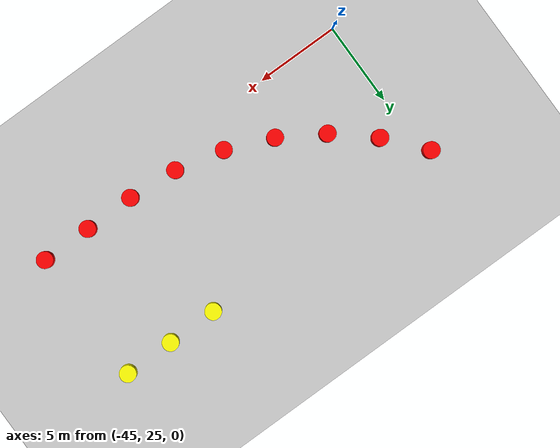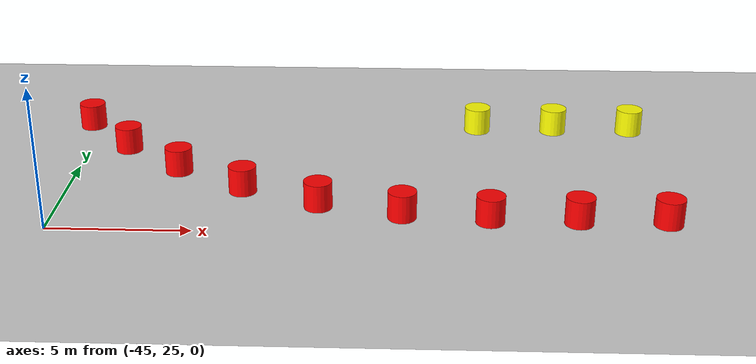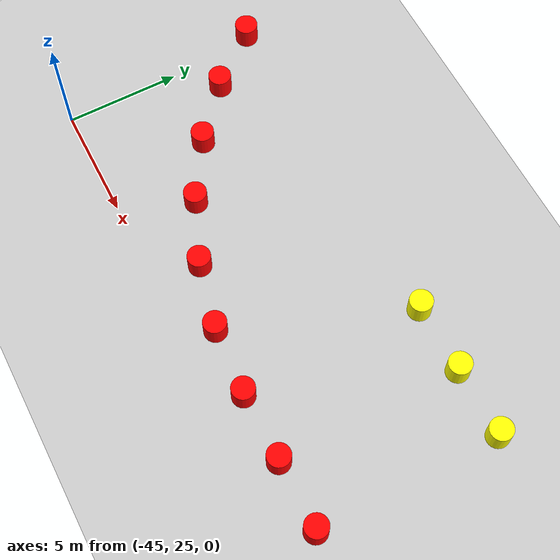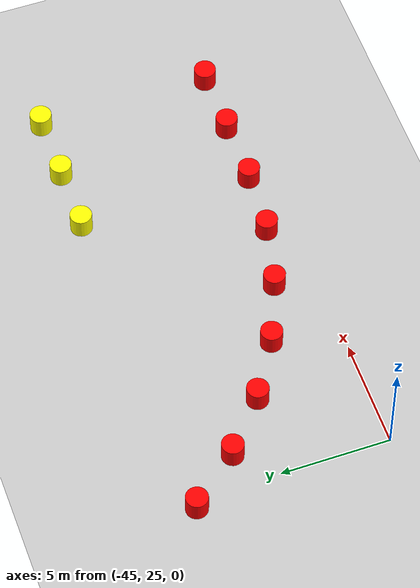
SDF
<sdf version="1.9">
 <world name="empty">
  <model name="ground_plane">
   <static>true</static>
   <link name="link">
    <collision name="collision">
     <geometry><plane><normal>0 0 1</normal><size>1000 1000</size></plane></geometry>
    </collision>
    <visual name="visual">
     <geometry><plane><normal>0 0 1</normal><size>1000 1000</size></plane></geometry>
     <material>
      <ambient>0.8 0.8 0.8 1</ambient>
      <diffuse>0.8 0.8 0.8 1</diffuse>
      <specular>0.8 0.8 0.8 1</specular>
     </material>
    </visual>
    <inertial>
     <mass>1</mass>
     <inertia><ixx>1</ixx><ixy>0</ixy><ixz>0</ixz><iyy>1</iyy><iyz>0</iyz><izz>1</izz></inertia>
    </inertial>
   </link>
  </model>
  <model name="red_cone_15">
   <pose>-24.0 26.0 0.5 0 -0 0</pose>
   <link name="cylinder_link">
    <inertial>
     <inertia>
      <ixx>0.14580000000000001</ixx>
      <ixy>0</ixy>
      <ixz>0</ixz>
      <iyy>0.14580000000000001</iyy>
      <iyz>0</iyz>
      <izz>0.125</izz>
     </inertia>
     <mass>1</mass>
    </inertial>
    <collision name="cylinder_collision">
     <geometry><cylinder><radius>0.5</radius><length>1</length></cylinder></geometry>
    </collision>
    <visual name="cylinder_visual">
     <geometry><cylinder><radius>0.5</radius><length>1</length></cylinder></geometry>
     <material><ambient>1 0 0 1</ambient><diffuse>1 0 0 1</diffuse><specular>1 1 1 1</specular></material>
    </visual>
   </link>
   <static>false</static>
  </model>
  <model name="red_cone_16">
   <pose>-27.0 26.0 0.5 0 -0 0</pose>
   <link name="cylinder_link">
    <inertial>
     <inertia>
      <ixx>0.14580000000000001</ixx>
      <ixy>0</ixy>
      <ixz>0</ixz>
      <iyy>0.14580000000000001</iyy>
      <iyz>0</iyz>
      <izz>0.125</izz>
     </inertia>
     <mass>1</mass>
    </inertial>
    <collision name="cylinder_collision">
     <geometry><cylinder><radius>0.5</radius><length>1</length></cylinder></geometry>
    </collision>
    <visual name="cylinder_visual">
     <geometry><cylinder><radius>0.5</radius><length>1</length></cylinder></geometry>
     <material><ambient>1 0 0 1</ambient><diffuse>1 0 0 1</diffuse><specular>1 1 1 1</specular></material>
    </visual>
   </link>
   <static>false</static>
  </model>
  <model name="red_cone_17">
   <pose>-30.0 26.0 0.5 0 -0 0</pose>
   <link name="cylinder_link">
    <inertial>
     <inertia>
      <ixx>0.14580000000000001</ixx>
      <ixy>0</ixy>
      <ixz>0</ixz>
      <iyy>0.14580000000000001</iyy>
      <iyz>0</iyz>
      <izz>0.125</izz>
     </inertia>
     <mass>1</mass>
    </inertial>
    <collision name="cylinder_collision">
     <geometry><cylinder><radius>0.5</radius><length>1</length></cylinder></geometry>
    </collision>
    <visual name="cylinder_visual">
     <geometry><cylinder><radius>0.5</radius><length>1</length></cylinder></geometry>
     <material><ambient>1 0 0 1</ambient><diffuse>1 0 0 1</diffuse><specular>1 1 1 1</specular></material>
    </visual>
   </link>
   <static>false</static>
  </model>
  <model name="red_cone_18">
   <pose>-29.999999999999996 26.0 0.5 0 -0 0</pose>
   <link name="cylinder_link">
    <inertial>
     <inertia>
      <ixx>0.14580000000000001</ixx>
      <ixy>0</ixy>
      <ixz>0</ixz>
      <iyy>0.14580000000000001</iyy>
      <iyz>0</iyz>
      <izz>0.125</izz>
     </inertia>
     <mass>1</mass>
    </inertial>
    <collision name="cylinder_collision">
     <geometry><cylinder><radius>0.5</radius><length>1</length></cylinder></geometry>
    </collision>
    <visual name="cylinder_visual">
     <geometry><cylinder><radius>0.5</radius><length>1</length></cylinder></geometry>
     <material><ambient>1 0 0 1</ambient><diffuse>1 0 0 1</diffuse><specular>1 1 1 1</specular></material>
    </visual>
   </link>
   <static>false</static>
  </model>
  <model name="red_cone_19">
   <pose>-32.98755015537325 26.23635045975519 0.5 0 -0 0</pose>
   <link name="cylinder_link">
    <inertial>
     <inertia>
      <ixx>0.14580000000000001</ixx>
      <ixy>0</ixy>
      <ixz>0</ixz>
      <iyy>0.14580000000000001</iyy>
      <iyz>0</iyz>
      <izz>0.125</izz>
     </inertia>
     <mass>1</mass>
    </inertial>
    <collision name="cylinder_collision">
     <geometry><cylinder><radius>0.5</radius><length>1</length></cylinder></geometry>
    </collision>
    <visual name="cylinder_visual">
     <geometry><cylinder><radius>0.5</radius><length>1</length></cylinder></geometry>
     <material><ambient>1 0 0 1</ambient><diffuse>1 0 0 1</diffuse><specular>1 1 1 1</specular></material>
    </visual>
   </link>
   <static>false</static>
  </model>
  <model name="red_cone_20">
   <pose>-35.90077306308712 26.939521676933765 0.5 0 -0 0</pose>
   <link name="cylinder_link">
    <inertial>
     <inertia>
      <ixx>0.14580000000000001</ixx>
      <ixy>0</ixy>
      <ixz>0</ixz>
      <iyy>0.14580000000000001</iyy>
      <iyz>0</iyz>
      <izz>0.125</izz>
     </inertia>
     <mass>1</mass>
    </inertial>
    <collision name="cylinder_collision">
     <geometry><cylinder><radius>0.5</radius><length>1</length></cylinder></geometry>
    </collision>
    <visual name="cylinder_visual">
     <geometry><cylinder><radius>0.5</radius><length>1</length></cylinder></geometry>
     <material><ambient>1 0 0 1</ambient><diffuse>1 0 0 1</diffuse><specular>1 1 1 1</specular></material>
    </visual>
   </link>
   <static>false</static>
  </model>
  <model name="red_cone_21">
   <pose>-38.66719066276187 28.092019457802376 0.5 0 -0 0</pose>
   <link name="cylinder_link">
    <inertial>
     <inertia>
      <ixx>0.14580000000000001</ixx>
      <ixy>0</ixy>
      <ixz>0</ixz>
      <iyy>0.14580000000000001</iyy>
      <iyz>0</iyz>
      <izz>0.125</izz>
     </inertia>
     <mass>1</mass>
    </inertial>
    <collision name="cylinder_collision">
     <geometry><cylinder><radius>0.5</radius><length>1</length></cylinder></geometry>
    </collision>
    <visual name="cylinder_visual">
     <geometry><cylinder><radius>0.5</radius><length>1</length></cylinder></geometry>
     <material><ambient>1 0 0 1</ambient><diffuse>1 0 0 1</diffuse><specular>1 1 1 1</specular></material>
    </visual>
   </link>
   <static>false</static>
  </model>
  <model name="red_cone_22">
   <pose>-41.21797726265454 29.665170814953118 0.5 0 -0 0</pose>
   <link name="cylinder_link">
    <inertial>
     <inertia>
      <ixx>0.14580000000000001</ixx>
      <ixy>0</ixy>
      <ixz>0</ixz>
      <iyy>0.14580000000000001</iyy>
      <iyz>0</iyz>
      <izz>0.125</izz>
     </inertia>
     <mass>1</mass>
    </inertial>
    <collision name="cylinder_collision">
     <geometry><cylinder><radius>0.5</radius><length>1</length></cylinder></geometry>
    </collision>
    <visual name="cylinder_visual">
     <geometry><cylinder><radius>0.5</radius><length>1</length></cylinder></geometry>
     <material><ambient>1 0 0 1</ambient><diffuse>1 0 0 1</diffuse><specular>1 1 1 1</specular></material>
    </visual>
   </link>
   <static>false</static>
  </model>
  <model name="red_cone_23">
   <pose>-43.489671853752306 31.61983732243577 0.5 0 -0 0</pose>
   <link name="cylinder_link">
    <inertial>
     <inertia>
      <ixx>0.14580000000000001</ixx>
      <ixy>0</ixy>
      <ixz>0</ixz>
      <iyy>0.14580000000000001</iyy>
      <iyz>0</iyz>
      <izz>0.125</izz>
     </inertia>
     <mass>1</mass>
    </inertial>
    <collision name="cylinder_collision">
     <geometry><cylinder><radius>0.5</radius><length>1</length></cylinder></geometry>
    </collision>
    <visual name="cylinder_visual">
     <geometry><cylinder><radius>0.5</radius><length>1</length></cylinder></geometry>
     <material><ambient>1 0 0 1</ambient><diffuse>1 0 0 1</diffuse><specular>1 1 1 1</specular></material>
    </visual>
   </link>
   <static>false</static>
  </model>
  <model name="red_cone_24">
   <pose>-45.425756955946795 33.90738884049121 0.5 0 -0 0</pose>
   <link name="cylinder_link">
    <inertial>
     <inertia>
      <ixx>0.14580000000000001</ixx>
      <ixy>0</ixy>
      <ixz>0</ixz>
      <iyy>0.14580000000000001</iyy>
      <iyz>0</iyz>
      <izz>0.125</izz>
     </inertia>
     <mass>1</mass>
    </inertial>
    <collision name="cylinder_collision">
     <geometry><cylinder><radius>0.5</radius><length>1</length></cylinder></geometry>
    </collision>
    <visual name="cylinder_visual">
     <geometry><cylinder><radius>0.5</radius><length>1</length></cylinder></geometry>
     <material><ambient>1 0 0 1</ambient><diffuse>1 0 0 1</diffuse><specular>1 1 1 1</specular></material>
    </visual>
   </link>
   <static>false</static>
  </model>
  <model name="yellow_cone_19">
   <pose>-24.0 34.0 0.5 0 -0 0</pose>
   <link name="cylinder_link">
    <inertial>
     <inertia>
      <ixx>0.14580000000000001</ixx>
      <ixy>0</ixy>
      <ixz>0</ixz>
      <iyy>0.14580000000000001</iyy>
      <iyz>0</iyz>
      <izz>0.125</izz>
     </inertia>
     <mass>1</mass>
    </inertial>
    <collision name="cylinder_collision">
     <geometry><cylinder><radius>0.5</radius><length>1</length></cylinder></geometry>
    </collision>
    <visual name="cylinder_visual">
     <geometry><cylinder><radius>0.5</radius><length>1</length></cylinder></geometry>
     <material><ambient>1 1 0 1</ambient><diffuse>1 1 0 1</diffuse><specular>1 1 1 1</specular></material>
    </visual>
   </link>
   <static>false</static>
  </model>
  <model name="yellow_cone_20">
   <pose>-27.0 34.0 0.5 0 -0 0</pose>
   <link name="cylinder_link">
    <inertial>
     <inertia>
      <ixx>0.14580000000000001</ixx>
      <ixy>0</ixy>
      <ixz>0</ixz>
      <iyy>0.14580000000000001</iyy>
      <iyz>0</iyz>
      <izz>0.125</izz>
     </inertia>
     <mass>1</mass>
    </inertial>
    <collision name="cylinder_collision">
     <geometry><cylinder><radius>0.5</radius><length>1</length></cylinder></geometry>
    </collision>
    <visual name="cylinder_visual">
     <geometry><cylinder><radius>0.5</radius><length>1</length></cylinder></geometry>
     <material><ambient>1 1 0 1</ambient><diffuse>1 1 0 1</diffuse><specular>1 1 1 1</specular></material>
    </visual>
   </link>
   <static>false</static>
  </model>
  <model name="yellow_cone_21">
   <pose>-30.0 34.0 0.5 0 -0 0</pose>
   <link name="cylinder_link">
    <inertial>
     <inertia>
      <ixx>0.14580000000000001</ixx>
      <ixy>0</ixy>
      <ixz>0</ixz>
      <iyy>0.14580000000000001</iyy>
      <iyz>0</iyz>
      <izz>0.125</izz>
     </inertia>
     <mass>1</mass>
    </inertial>
    <collision name="cylinder_collision">
     <geometry><cylinder><radius>0.5</radius><length>1</length></cylinder></geometry>
    </collision>
    <visual name="cylinder_visual">
     <geometry><cylinder><radius>0.5</radius><length>1</length></cylinder></geometry>
     <material><ambient>1 1 0 1</ambient><diffuse>1 1 0 1</diffuse><specular>1 1 1 1</specular></material>
    </visual>
   </link>
   <static>false</static>
  </model>
 </world>
</sdf>
